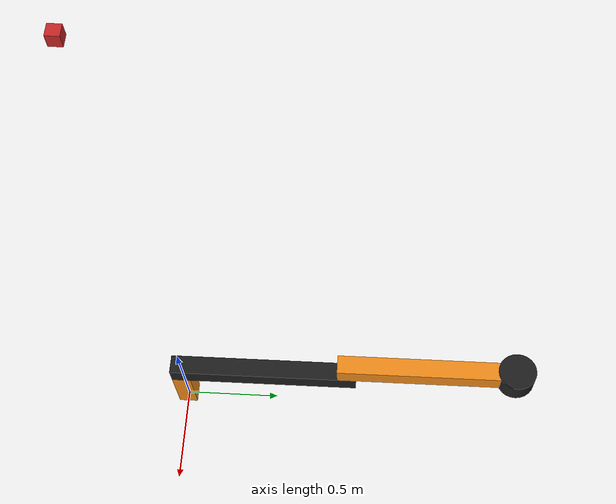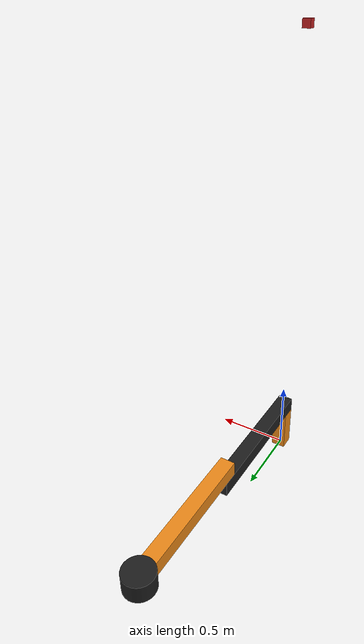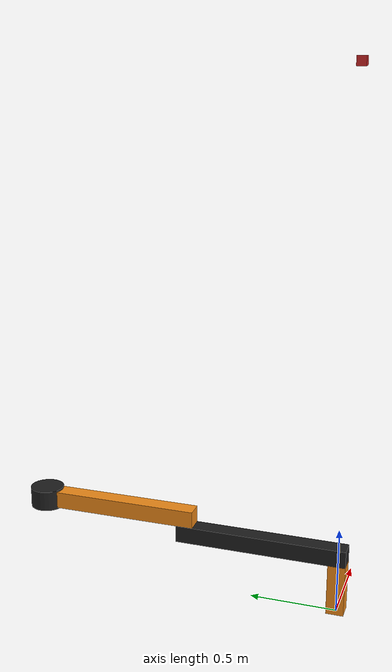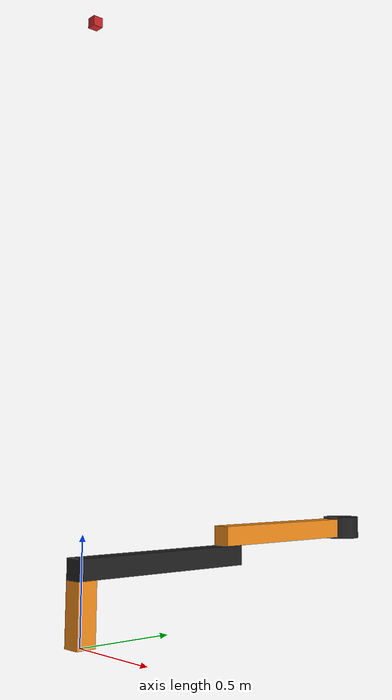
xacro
<?xml version="1.0"?>
<!-- Revolute-Revolute Manipulator -->
<robot name="rrbot" xmlns:xacro="http://www.ros.org/wiki/xacro">

  <!-- Constants for robot dimensions -->
  <!-- Don't forget to change these values in robot_ctl.py -->
  <xacro:property name="PI" value="3.1415926535897931"/>
  <xacro:property name="mass" value="1" /> <!-- arbitrary value for mass -->
  <xacro:property name="width" value="0.1" /> <!-- Square dimensions (widthxwidth) of beams -->
  <xacro:property name="height1" value="0.3" /> <!-- Link 1 -->
  <xacro:property name="height2" value="1" /> <!-- Link 2 -->
  <xacro:property name="height3" value="1" /> <!-- Link 3 -->
  <xacro:property name="camera_link" value="0.05" /> <!-- Size of square 'camera' box -->
  <xacro:property name="camera_height" value="3" /> <!-- Height of camera above the robot -->
  <xacro:property name="axel_offset" value="0.05" /> <!-- Space btw top of beam and each joint -->

  <!-- Import all Gazebo-customization elements, including Gazebo colors -->
  <xacro:include filename="$(find rrbot_description)/urdf/rrbot.gazebo" />
  <!-- Import Rviz colors -->
  <xacro:include filename="$(find rrbot_description)/urdf/materials.xacro" />

  <!-- Used for fixing robot to Gazebo 'base_link' -->
  <link name="world"/>

  <joint name="fixed" type="fixed">
    <parent link="world"/>
    <child link="link1"/>
  </joint>

  <!-- Base Link -->
  <link name="link1">
    <collision>
      <origin xyz="0 0 ${height1/2}" rpy="0 0 0"/>
      <geometry>
	      <box size="${width} ${width} ${height1}"/>
      </geometry>
    </collision>

    <visual>
      <origin xyz="0 0 ${height1/2}" rpy="0 0 0"/>
      <geometry>
	      <box size="${width} ${width} ${height1}"/>
      </geometry>
      <material name="orange"/>
    </visual>

    <inertial>
      <origin xyz="0 0 ${height1/2}" rpy="0 0 0"/>
      <mass value="${mass}"/>
      <inertia
	  ixx="${mass / 12.0 * (width*width + height1*height1)}" ixy="0.0" ixz="0.0"
	  iyy="${mass / 12.0 * (height1*height1 + width*width)}" iyz="0.0"
	  izz="${mass / 12.0 * (width*width + width*width)}"/>
    </inertial>
  </link>

  <joint name="joint1" type="continuous">
    <parent link="link1"/>
    <child link="link2"/>
    <origin xyz="0 0 ${height1 + axel_offset}" rpy="0 0 0"/>
    <axis xyz="0 0 1"/>
    <dynamics damping="0.7"/>
    <limit effort="1000.0" velocity="0.5"/>
  </joint>

  <!-- Middle Link -->
  <link name="link2">
    <collision>
      <origin xyz="0 ${height2/2 - axel_offset} 0" rpy="0 0 0"/>
      <geometry>
	<box size="${width} ${height2} ${width} "/>
      </geometry>
    </collision>

    <visual>
      <origin xyz="0 ${height2/2 - axel_offset} 0" rpy="0 0 0"/>
      <geometry>
	<box size="${width} ${height2} ${width}"/>
      </geometry>
      <material name="black"/>
    </visual>

    <inertial>
      <origin xyz="0 ${height2/2 - axel_offset} 0"  rpy="0 0 0"/>
      <mass value="${mass}"/>
      <inertia
	  ixx="${mass / 12.0 * (height2*height2 + width*width)}" ixy="0.0" ixz="0.0"
	  iyy="${mass / 12.0 * (width*width + width*width)}" iyz="0.0"
	  izz="${mass / 12.0 * (width*width + height2*height2)}"/>
    </inertial>
  </link>

  <joint name="joint2" type="continuous">
    <parent link="link2"/>
    <child link="link3"/>
    <origin xyz="0 ${height2 - axel_offset * 2} ${width}" rpy="0 0 0"/>
    <axis xyz="0 0 1"/>
    <dynamics damping="0.7"/>
    <limit effort="1000.0" velocity="0.5"/>
  </joint>

  <!-- Top Link -->
  <link name="link3">
    <collision>
      <origin xyz="0 ${height3/2 - axel_offset} 0" rpy="0 0 0"/>
      <geometry>
	<box size="${width} ${height3} ${width} "/>
      </geometry>
    </collision>

    <visual>
      <origin xyz="0 ${height3/2 - axel_offset} 0" rpy="0 0 0"/>
      <geometry>
	      <box size="${width} ${height3} ${width}"/>
      </geometry>
      <material name="orange"/>
    </visual>

    <inertial>
      <origin xyz="0 ${height3/2 - axel_offset} 0" rpy="0 0 0"/>
      <mass value="${mass}"/>
      <inertia
	  ixx="${mass / 12.0 * (height3*height3 + width*width)}" ixy="0.0" ixz="0.0"
	  iyy="${mass / 12.0 * (width*width + width*width)}" iyz="0.0"
	  izz="${mass / 12.0 * (width*width + height3*height3)}"/>
    </inertial>
  </link>

  <!-- Actuator Magnet -->
  <joint name="joint3" type="revolute">    <!-- Revolute instead of fixed because links get joined together and then I cannot read link pose -->
    <parent link="link3"/>
    <child link="actuator"/>
    <origin xyz="0 ${height2 - axel_offset * 2} 0" rpy="0 0 0"/>
    <limit lower="0" upper="0" effort="10" velocity="3"/>
    <axis xyz="0 0 1"/>
  </joint>

  <link name="actuator">
    <inertial>
      <origin xyz="0 0 0.02" rpy="0 0 0"/>
      <mass value="0.05"/>
      <inertia
	  ixx="0.01" ixy="0.0" ixz="0.0"
	  iyy="0.01" iyz="0.0"
	  izz="0.01"/>
    </inertial>

    <collision>
      <geometry>
        <cylinder radius="0.1" length="0.12"/>
      </geometry>
    </collision>

    <visual>
      <geometry>
        <cylinder radius="0.1" length="0.12"/>
      </geometry>
      <material name="black"/>
    </visual>
  </link>

  <!-- Camera -->
  <joint name="camera_joint" type="fixed">
    <axis xyz="0 1 0" />
    <origin xyz="0 0 ${camera_height}" rpy="0 ${PI/2} ${PI/2}"/>
    <parent link="world"/>
    <child link="camera_link"/>
  </joint>

  <link name="camera_link">
    <collision>
      <origin xyz="0 0 0" rpy="0 0 0"/>
      <geometry>
	<box size="${camera_link} ${camera_link} ${camera_link}"/>
      </geometry>
    </collision>

    <visual>
      <origin xyz="0 0 0" rpy="0 0 0"/>
      <geometry>
	<box size="${camera_link} ${camera_link} ${camera_link}"/>
      </geometry>
      <material name="red"/>
    </visual>

    <inertial>
      <mass value="1e-5" />
      <origin xyz="0 0 0" rpy="0 0 0"/>
      <inertia ixx="1e-6" ixy="0" ixz="0" iyy="1e-6" iyz="0" izz="1e-6" />
    </inertial>
  </link>

  <!-- generate an optical frame http://www.ros.org/reps/rep-0103.html#suffix-frames
      so that ros and opencv can operate on the camera frame correctly -->
  <joint name="camera_optical_joint" type="fixed">
    <!-- these values have to be these values otherwise the gazebo camera image
        won't be aligned properly with the frame it is supposedly originating from -->
    <origin xyz="0 0 0" rpy="${-pi/2} 0 ${-pi/2}"/>
    <parent link="camera_link"/>
    <child link="camera_link_optical"/>
  </joint>

  <link name="camera_link_optical">
  </link>

  <transmission name="tran1">
    <type>transmission_interface/SimpleTransmission</type>
    <joint name="joint1">
      <hardwareInterface>hardware_interface/EffortJointInterface</hardwareInterface>
    </joint>
    <actuator name="motor1">
      <hardwareInterface>hardware_interface/EffortJointInterface</hardwareInterface>
      <mechanicalReduction>1</mechanicalReduction>
    </actuator>
  </transmission>

  <transmission name="tran2">
    <type>transmission_interface/SimpleTransmission</type>
    <joint name="joint2">
      <hardwareInterface>hardware_interface/EffortJointInterface</hardwareInterface>
    </joint>
    <actuator name="motor2">
      <hardwareInterface>hardware_interface/EffortJointInterface</hardwareInterface>
      <mechanicalReduction>1</mechanicalReduction>
    </actuator>
  </transmission>

  <transmission name="tran3">
    <type>transmission_interface/SimpleTransmission</type>
    <joint name="joint3">
      <hardwareInterface>hardware_interface/EffortJointInterface</hardwareInterface>
    </joint>
    <actuator name="motor3">
      <hardwareInterface>hardware_interface/EffortJointInterface</hardwareInterface>
      <mechanicalReduction>1</mechanicalReduction>
    </actuator>
  </transmission>

</robot>
